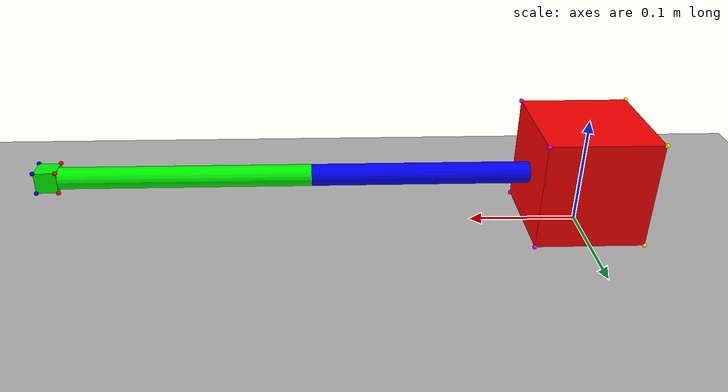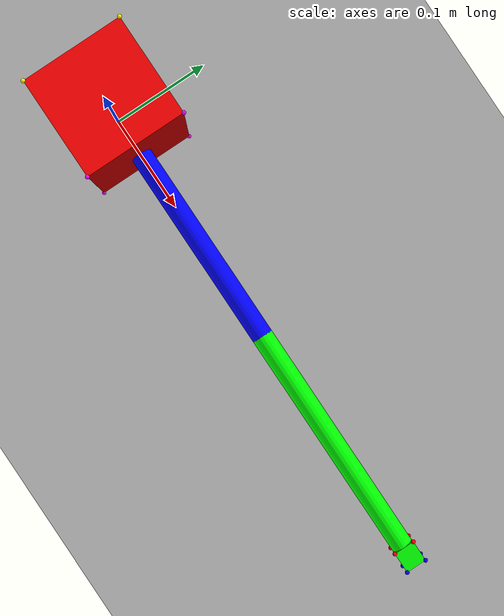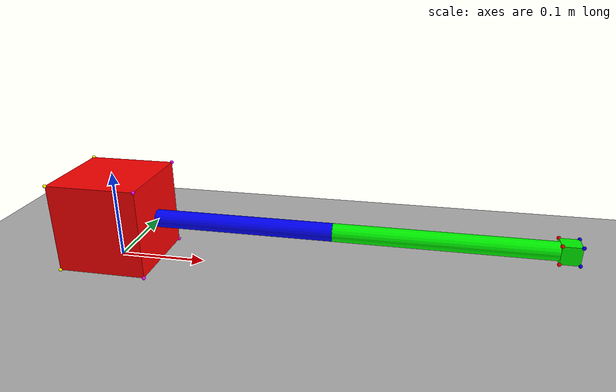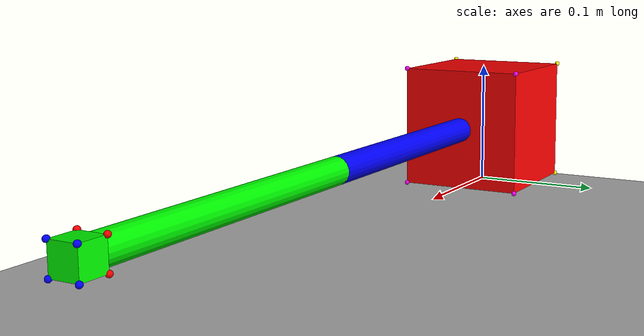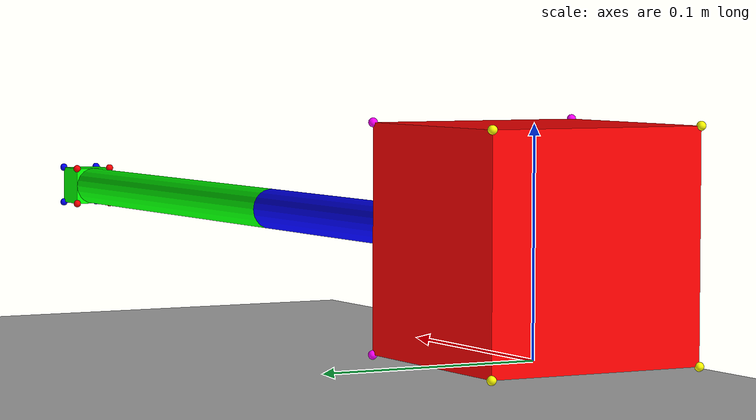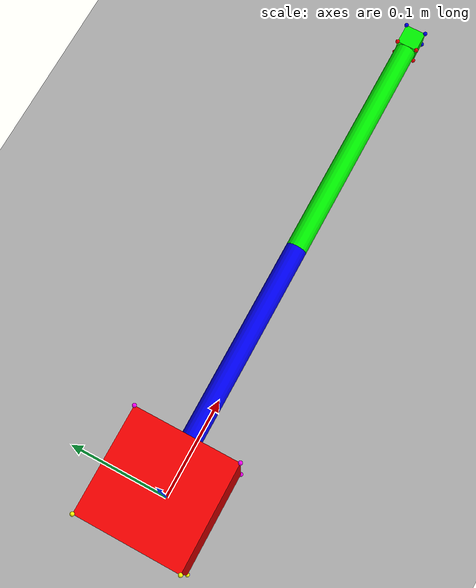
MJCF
<mujoco>
    <option gravity="0 0 -9.81" timestep="0.002" solver="PGS" iterations="50"/>

    <contact>
        <pair geom1="base_geom" geom2="link1_geom" condim="3"/>
        <pair geom1="base_geom" geom2="link2_geom" condim="3"/>
    </contact>

    <actuator>
        <motor joint="joint1" ctrlrange="-1 1"/>
        <motor joint="joint2" ctrlrange="-1 1"/>
    </actuator>

    <sensor>
        <frameangvel name="link1_vel" objtype="body" objname="link1"/>
        <frameangvel name="link2_vel" objtype="body" objname="link2"/>

        <touch name="floor_touch_1" site="corner1"/>
        <touch name="floor_touch_2" site="corner2"/>
        <touch name="floor_touch_3" site="corner3"/>
        <touch name="floor_touch_4" site="corner4"/>
        <touch name="floor_touch_5" site="corner5"/>
        <touch name="floor_touch_6" site="corner6"/>
        <touch name="floor_touch_7" site="corner7"/>
        <touch name="floor_touch_8" site="corner8"/>

        <touch name="floor_touch_knee" site="knee"/>

        <touch name="floor_touch_1_b" site="b_corner1"/>
        <touch name="floor_touch_2_b" site="b_corner2"/>
        <touch name="floor_touch_3_b" site="b_corner3"/>
        <touch name="floor_touch_4_b" site="b_corner4"/>
        <touch name="floor_touch_5_b" site="b_corner5"/>
        <touch name="floor_touch_6_b" site="b_corner6"/>
        <touch name="floor_touch_7_b" site="b_corner7"/>
        <touch name="floor_touch_8_b" site="b_corner8"/>
    </sensor>

    <asset>
        <texture name="grid" type="2d" builtin="checker" width="512" height="512" rgb1="0.8 0.8 0.8" rgb2="0.6 0.6 0.6"/>
        <material name="grid_material" texture="grid" texrepeat="10 10"/>
    </asset>

    <worldbody>
        <light name="top" pos="0 0 100"/>

        <camera name="side_view" pos="0.3 -0.6 0.2" xyaxes="1 0 0 0 0 1"/>

        <body name="base" pos="0 0 0.05">
            <geom name="base_geom" type="box" size="0.05 0.05 0.05" rgba="1 0 0 1" mass="0.5" contype="1" solimp="0.9 0.99 0.001" solref="0.002 1" friction="0.0001 0.0001 0.01"/>

            <site name="b_corner1" pos="-0.05 -0.05 -0.05" size="0.002" rgba="1 1 0 1"/>
            <site name="b_corner2" pos="-0.05 -0.05  0.05" size="0.002" rgba="1 1 0 1"/>
            <site name="b_corner3" pos="-0.05  0.05 -0.05" size="0.002" rgba="1 1 0 1"/>
            <site name="b_corner4" pos="-0.05  0.05  0.05" size="0.002" rgba="1 1 0 1"/>
            <site name="b_corner5" pos=" 0.05 -0.05 -0.05" size="0.002" rgba="1 0 1 1"/>
            <site name="b_corner6" pos=" 0.05 -0.05  0.05" size="0.002" rgba="1 0 1 1"/>
            <site name="b_corner7" pos=" 0.05  0.05 -0.05" size="0.002" rgba="1 0 1 1"/>
            <site name="b_corner8" pos=" 0.05  0.05  0.05" size="0.002" rgba="1 0 1 1"/>

            <joint name="base_joint" type="free"/>

            <!-- First joint and link -->
            <body name="link1" pos="0.05 0 0">
                <joint name="joint1" type="hinge" axis="0 1 0" range="-80 80"/>
                <geom name="link1_geom" type="capsule" fromto="0 0 0 0.2 0 0" size="0.01" rgba="0 0 1 1" mass="0.2" contype="1" solimp="0.95 0.99 0.001" solref="0.002 1" conaffinity="1"/>
                <site name="knee" pos="0.2 0 0" size="0.002" rgba="1 0 0 1"/>

                <!-- Second joint and link -->
                <body name="link2" pos="0.2 0 0">
                    <joint name="joint2" type="hinge" axis="0 1 0" range="0 150"/>
                    <geom name="link2_geom" type="capsule" fromto="0 0 0 0.24 0 0" size="0.01" rgba="0 1 0 1" mass="0.1" contype="1" solimp="0.95 0.99 0.001" solref="0.002 1" conaffinity="1"/>
                        <geom name="link2_termination" pos="0.24 0 0" type="box" size="0.01 0.01 0.01" rgba="0 1 0 1" mass="0.1" contype="1" solimp="0.9 0.9 0.001" solref="0.002 1" friction="0.99 0.9 0.3" conaffinity="1"/>

                        <site name="corner1" pos="0.23  -0.01 -0.01" size="0.002" rgba="1 0 0 1"/>
                        <site name="corner2" pos="0.23  -0.01  0.01" size="0.002" rgba="1 0 0 1"/>
                        <site name="corner3" pos="0.23   0.01 -0.01" size="0.002" rgba="1 0 0 1"/>
                        <site name="corner4" pos="0.23   0.01  0.01" size="0.002" rgba="1 0 0 1"/>
                        <site name="corner5" pos="0.25  -0.01 -0.01" size="0.002" rgba="0 0 1 1"/>
                        <site name="corner6" pos="0.25  -0.01  0.01" size="0.002" rgba="0 0 1 1"/>
                        <site name="corner7" pos="0.25   0.01 -0.01" size="0.002" rgba="0 0 1 1"/>
                        <site name="corner8" pos="0.25   0.01  0.01" size="0.002" rgba="0 0 1 1"/>

                </body>

            </body>
        </body>

        <!-- Floor geometry with friction and solimp to avoid penetration -->
        <geom name="floor" type="plane" pos="0 0 -0.05" size="1000 1000 0.1" material="grid_material" friction="0.5 0.5 0.3" solimp="0.9 0.99 0.001" solref="0.002 1" contype="1" conaffinity="1"/>

    </worldbody>

</mujoco>
